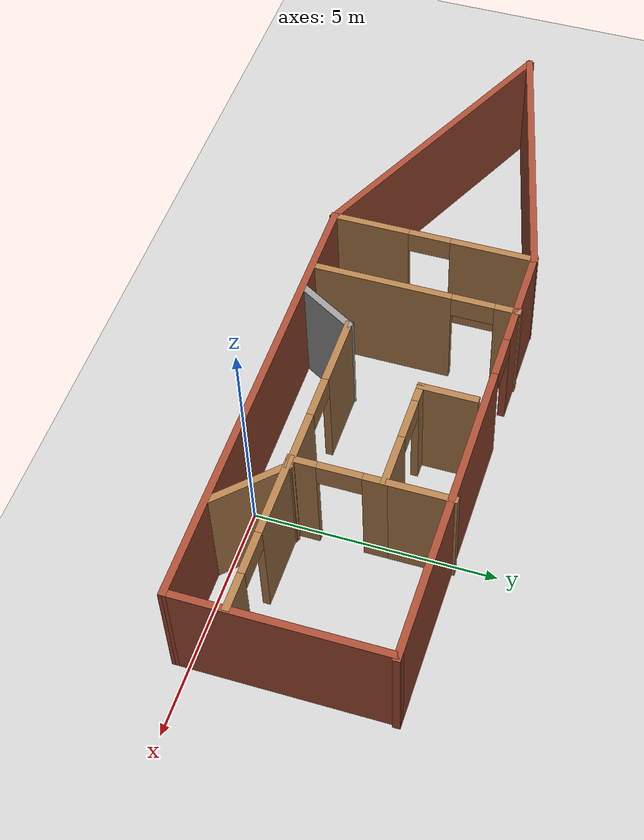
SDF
<sdf version="1.7">
 <world name="default">
  <light name="sun" type="directional">
   <pose>0 0 10 0 -0 0</pose>
   <diffuse>0.8 0.8 0.8 1</diffuse>
   <specular>0.2 0.2 0.2 1</specular>
   <attenuation>
    <range>1000</range>
    <constant>0.9</constant>
    <linear>0.01</linear>
    <quadratic>0.001</quadratic>
   </attenuation>
   <direction>-0.5 0.1 -0.9</direction>
   <spot><inner_angle>0</inner_angle><outer_angle>0</outer_angle><falloff>0</falloff></spot>
  </light>
  <model name="ground_plane">
   <static>1</static>
   <link name="link">
    <collision name="collision">
     <geometry><plane><normal>0 0 1</normal><size>100 100</size></plane></geometry>
     <surface>
      <contact><collide_bitmask>65535</collide_bitmask></contact>
      <friction><ode><mu>100</mu><mu2>50</mu2></ode></friction>
     </surface>
    </collision>
    <visual name="visual">
     <cast_shadows>0</cast_shadows>
     <geometry><plane><normal>0 0 1</normal><size>100 100</size></plane></geometry>
     <material>
      <script><uri>file://media/materials/scripts/gazebo.material</uri><name>Gazebo/Grey</name></script>
     </material>
    </visual>
   </link>
  </model>
  <gravity>0 0 -9.8</gravity>
  <magnetic_field>6e-06 2.3e-05 -4.2e-05</magnetic_field>
  <atmosphere type="adiabatic"/>
  <physics type="ode">
   <max_step_size>0.001</max_step_size>
   <real_time_factor>1</real_time_factor>
   <real_time_update_rate>1000</real_time_update_rate>
  </physics>
  <scene><ambient>0.4 0.4 0.4 1</ambient><background>0.7 0.7 0.7 1</background><shadows>1</shadows></scene>
  <spherical_coordinates>
   <surface_model>EARTH_WGS84</surface_model>
   <latitude_deg>0</latitude_deg>
   <longitude_deg>0</longitude_deg>
   <elevation>0</elevation>
   <heading_deg>0</heading_deg>
  </spherical_coordinates>
  <model name="Untitled">
   <pose>-4.24526 1.90712 0 0 -0 0</pose>
   <link name="Wall_0">
    <pose>2.98152 2.14819 0 0 -0 3.14159</pose>
    <visual name="Wall_0_Visual_0">
     <pose>-1.59177 0 1.25 0 -0 0</pose>
     <geometry><box><size>6.56647 0.15 2.5</size></box></geometry>
     <material>
      <script><uri>file://media/materials/scripts/gazebo.material</uri><name>Gazebo/Bricks</name></script>
      <ambient>1 1 1 1</ambient>
     </material>
     <meta><layer>0</layer></meta>
    </visual>
    <collision name="Wall_0_Collision_0">
     <geometry><box><size>6.56647 0.15 2.5</size></box></geometry>
     <pose>-1.59177 0 1.25 0 -0 0</pose>
    </collision>
    <visual name="Wall_0_Visual_1">
     <pose>3.73323 0 1.25 0 -0 0</pose>
     <geometry><box><size>2.28353 0.15 2.5</size></box></geometry>
     <material>
      <script><uri>file://media/materials/scripts/gazebo.material</uri><name>Gazebo/Bricks</name></script>
      <ambient>1 1 1 1</ambient>
     </material>
     <meta><layer>0</layer></meta>
    </visual>
    <collision name="Wall_0_Collision_1">
     <geometry><box><size>2.28353 0.15 2.5</size></box></geometry>
     <pose>3.73323 0 1.25 0 -0 0</pose>
    </collision>
    <visual name="Wall_0_Visual_2">
     <pose>2.14147 0 2.25 0 -0 0</pose>
     <geometry><box><size>0.9 0.15 0.5</size></box></geometry>
     <material>
      <script><uri>file://media/materials/scripts/gazebo.material</uri><name>Gazebo/Bricks</name></script>
      <ambient>1 1 1 1</ambient>
     </material>
     <meta><layer>0</layer></meta>
    </visual>
    <collision name="Wall_0_Collision_2">
     <geometry><box><size>0.9 0.15 0.5</size></box></geometry>
     <pose>2.14147 0 2.25 0 -0 0</pose>
    </collision>
   </link>
   <link name="Wall_1">
    <pose>-1.85974 -0.014464 0 0 -0 -1.56848</pose>
    <visual name="Wall_1_Visual_0">
     <pose>-1.30721 0 1.25 0 -0 0</pose>
     <geometry><box><size>1.86169 0.15 2.5</size></box></geometry>
     <material>
      <script><uri>file://media/materials/scripts/gazebo.material</uri><name>Gazebo/Wood</name></script>
      <ambient>1 1 1 1</ambient>
     </material>
     <meta><layer>0</layer></meta>
    </visual>
    <collision name="Wall_1_Collision_0">
     <geometry><box><size>1.86169 0.15 2.5</size></box></geometry>
     <pose>-1.30721 0 1.25 0 -0 0</pose>
    </collision>
    <visual name="Wall_1_Visual_1">
     <pose>1.38084 0 1.25 0 -0 0</pose>
     <geometry><box><size>1.71442 0.15 2.5</size></box></geometry>
     <material>
      <script><uri>file://media/materials/scripts/gazebo.material</uri><name>Gazebo/Wood</name></script>
      <ambient>1 1 1 1</ambient>
     </material>
     <meta><layer>0</layer></meta>
    </visual>
    <collision name="Wall_1_Collision_1">
     <geometry><box><size>1.71442 0.15 2.5</size></box></geometry>
     <pose>1.38084 0 1.25 0 -0 0</pose>
    </collision>
    <visual name="Wall_1_Visual_2">
     <pose>0.073635 0 2.25 0 -0 0</pose>
     <geometry><box><size>0.9 0.15 0.5</size></box></geometry>
     <material>
      <script><uri>file://media/materials/scripts/gazebo.material</uri><name>Gazebo/Wood</name></script>
      <ambient>1 1 1 1</ambient>
     </material>
     <meta><layer>0</layer></meta>
    </visual>
    <collision name="Wall_1_Collision_2">
     <geometry><box><size>0.9 0.15 0.5</size></box></geometry>
     <pose>0.073635 0 2.25 0 -0 0</pose>
    </collision>
   </link>
   <link name="Wall_10">
    <collision name="Wall_10_Collision">
     <geometry><box><size>1.5 0.15 2.5</size></box></geometry>
     <pose>0 0 1.25 0 -0 0</pose>
    </collision>
    <visual name="Wall_10_Visual">
     <pose>0 0 1.25 0 -0 0</pose>
     <geometry><box><size>1.5 0.15 2.5</size></box></geometry>
     <material>
      <script><uri>file://media/materials/scripts/gazebo.material</uri><name>Gazebo/Wood</name></script>
      <ambient>1 1 1 1</ambient>
     </material>
     <meta><layer>0</layer></meta>
    </visual>
    <pose>4.35591 1.52676 0 0 -0 -1.5708</pose>
   </link>
   <link name="Wall_11">
    <pose>3.18091 0.851762 0 0 -0 3.14159</pose>
    <visual name="Wall_11_Visual_0">
     <pose>-0.67419 0 1.25 0 -0 0</pose>
     <geometry><box><size>1.15162 0.15 2.5</size></box></geometry>
     <material>
      <script><uri>file://media/materials/scripts/gazebo.material</uri><name>Gazebo/Wood</name></script>
      <ambient>1 1 1 1</ambient>
     </material>
     <meta><layer>0</layer></meta>
    </visual>
    <collision name="Wall_11_Collision_0">
     <geometry><box><size>1.15162 0.15 2.5</size></box></geometry>
     <pose>-0.67419 0 1.25 0 -0 0</pose>
    </collision>
    <visual name="Wall_11_Visual_1">
     <pose>1.02581 0 1.25 0 -0 0</pose>
     <geometry><box><size>0.44838 0.15 2.5</size></box></geometry>
     <material>
      <script><uri>file://media/materials/scripts/gazebo.material</uri><name>Gazebo/Wood</name></script>
      <ambient>1 1 1 1</ambient>
     </material>
     <meta><layer>0</layer></meta>
    </visual>
    <collision name="Wall_11_Collision_1">
     <geometry><box><size>0.44838 0.15 2.5</size></box></geometry>
     <pose>1.02581 0 1.25 0 -0 0</pose>
    </collision>
    <visual name="Wall_11_Visual_2">
     <pose>0.35162 0 2.25 0 -0 0</pose>
     <geometry><box><size>0.9 0.15 0.5</size></box></geometry>
     <material>
      <script><uri>file://media/materials/scripts/gazebo.material</uri><name>Gazebo/Wood</name></script>
      <ambient>1 1 1 1</ambient>
     </material>
     <meta><layer>0</layer></meta>
    </visual>
    <collision name="Wall_11_Collision_2">
     <geometry><box><size>0.9 0.15 0.5</size></box></geometry>
     <pose>0.35162 0 2.25 0 -0 0</pose>
    </collision>
   </link>
   <link name="Wall_12">
    <collision name="Wall_12_Collision">
     <geometry><box><size>1.25 0.15 2.5</size></box></geometry>
     <pose>0 0 1.25 0 -0 0</pose>
    </collision>
    <visual name="Wall_12_Visual">
     <pose>0 0 1.25 0 -0 0</pose>
     <geometry><box><size>1.25 0.15 2.5</size></box></geometry>
     <material>
      <script><uri>file://media/materials/scripts/gazebo.material</uri><name>Gazebo/Wood</name></script>
      <ambient>1 1 1 1</ambient>
     </material>
     <meta><layer>0</layer></meta>
    </visual>
    <pose>2.00591 1.40176 0 0 -0 1.5708</pose>
   </link>
   <link name="Wall_14">
    <collision name="Wall_14_Collision">
     <geometry><box><size>6.25 0.15 2.5</size></box></geometry>
     <pose>0 0 1.25 0 -0 0</pose>
    </collision>
    <visual name="Wall_14_Visual">
     <pose>0 0 1.25 0 -0 0</pose>
     <geometry><box><size>6.25 0.15 2.5</size></box></geometry>
     <material>
      <script><uri>file://media/materials/scripts/gazebo.material</uri><name>Gazebo/Bricks</name></script>
      <ambient>1 1 1 1</ambient>
     </material>
     <meta><layer>0</layer></meta>
    </visual>
    <pose>-4.81081 1.35879 0 0 -0 -2.87979</pose>
   </link>
   <link name="Wall_15">
    <collision name="Wall_15_Collision">
     <geometry><box><size>6.65989 0.15 2.5</size></box></geometry>
     <pose>0 0 1.25 0 -0 0</pose>
    </collision>
    <visual name="Wall_15_Visual">
     <pose>0 0 1.25 0 -0 0</pose>
     <geometry><box><size>6.65989 0.15 2.5</size></box></geometry>
     <material>
      <script><uri>file://media/materials/scripts/gazebo.material</uri><name>Gazebo/Bricks</name></script>
      <ambient>1 1 1 1</ambient>
     </material>
     <meta><layer>0</layer></meta>
    </visual>
    <pose>-4.80581 -0.803862 0 0 -0 -0.435539</pose>
   </link>
   <link name="Wall_17">
    <pose>4.35591 -0.073238 0 0 -0 -1.5708</pose>
    <visual name="Wall_17_Visual_0">
     <pose>-0.752231 0 1.25 0 -0 0</pose>
     <geometry><box><size>0.495538 0.15 2.5</size></box></geometry>
     <material>
      <script><uri>file://media/materials/scripts/gazebo.material</uri><name>Gazebo/Wood</name></script>
      <ambient>1 1 1 1</ambient>
     </material>
     <meta><layer>0</layer></meta>
    </visual>
    <collision name="Wall_17_Collision_0">
     <geometry><box><size>0.495538 0.15 2.5</size></box></geometry>
     <pose>-0.752231 0 1.25 0 -0 0</pose>
    </collision>
    <visual name="Wall_17_Visual_1">
     <pose>0.697769 0 1.25 0 -0 0</pose>
     <geometry><box><size>0.604462 0.15 2.5</size></box></geometry>
     <material>
      <script><uri>file://media/materials/scripts/gazebo.material</uri><name>Gazebo/Wood</name></script>
      <ambient>1 1 1 1</ambient>
     </material>
     <meta><layer>0</layer></meta>
    </visual>
    <collision name="Wall_17_Collision_1">
     <geometry><box><size>0.604462 0.15 2.5</size></box></geometry>
     <pose>0.697769 0 1.25 0 -0 0</pose>
    </collision>
    <visual name="Wall_17_Visual_2">
     <pose>-0.054462 0 2.25 0 -0 0</pose>
     <geometry><box><size>0.9 0.15 0.5</size></box></geometry>
     <material>
      <script><uri>file://media/materials/scripts/gazebo.material</uri><name>Gazebo/Wood</name></script>
      <ambient>1 1 1 1</ambient>
     </material>
     <meta><layer>0</layer></meta>
    </visual>
    <collision name="Wall_17_Collision_2">
     <geometry><box><size>0.9 0.15 0.5</size></box></geometry>
     <pose>-0.054462 0 2.25 0 -0 0</pose>
    </collision>
   </link>
   <link name="Wall_18">
    <pose>6.03091 -0.998238 0 0 -0 0</pose>
    <visual name="Wall_18_Visual_0">
     <pose>-0.850361 0 1.25 0 -0 0</pose>
     <geometry><box><size>1.79928 0.15 2.5</size></box></geometry>
     <material>
      <script><uri>file://media/materials/scripts/gazebo.material</uri><name>Gazebo/Wood</name></script>
      <ambient>1 1 1 1</ambient>
     </material>
     <meta><layer>0</layer></meta>
    </visual>
    <collision name="Wall_18_Collision_0">
     <geometry><box><size>1.79928 0.15 2.5</size></box></geometry>
     <pose>-0.850361 0 1.25 0 -0 0</pose>
    </collision>
    <visual name="Wall_18_Visual_1">
     <pose>1.34964 0 1.25 0 -0 0</pose>
     <geometry><box><size>0.800723 0.15 2.5</size></box></geometry>
     <material>
      <script><uri>file://media/materials/scripts/gazebo.material</uri><name>Gazebo/Wood</name></script>
      <ambient>1 1 1 1</ambient>
     </material>
     <meta><layer>0</layer></meta>
    </visual>
    <collision name="Wall_18_Collision_1">
     <geometry><box><size>0.800723 0.15 2.5</size></box></geometry>
     <pose>1.34964 0 1.25 0 -0 0</pose>
    </collision>
    <visual name="Wall_18_Visual_2">
     <pose>0.499277 0 2.25 0 -0 0</pose>
     <geometry><box><size>0.9 0.15 0.5</size></box></geometry>
     <material>
      <script><uri>file://media/materials/scripts/gazebo.material</uri><name>Gazebo/Wood</name></script>
      <ambient>1 1 1 1</ambient>
     </material>
     <meta><layer>0</layer></meta>
    </visual>
    <collision name="Wall_18_Collision_2">
     <geometry><box><size>0.9 0.15 0.5</size></box></geometry>
     <pose>0.499277 0 2.25 0 -0 0</pose>
    </collision>
   </link>
   <link name="Wall_2">
    <collision name="Wall_2_Collision">
     <geometry><box><size>9.75 0.15 2.5</size></box></geometry>
     <pose>0 0 1.25 0 -0 0</pose>
    </collision>
    <visual name="Wall_2_Visual">
     <pose>0 0 1.25 0 -0 0</pose>
     <geometry><box><size>9.75 0.15 2.5</size></box></geometry>
     <material>
      <script><uri>file://media/materials/scripts/gazebo.material</uri><name>Gazebo/Bricks</name></script>
      <ambient>1 1 1 1</ambient>
     </material>
     <meta><layer>0</layer></meta>
    </visual>
    <pose>2.94526 -2.17712 0 0 -0 0</pose>
   </link>
   <link name="Wall_20">
    <pose>-0.385863 0.003631 0 0 -0 -1.5708</pose>
    <visual name="Wall_20_Visual_0">
     <pose>-1.97489 0 1.25 0 -0 0</pose>
     <geometry><box><size>0.550224 0.15 2.5</size></box></geometry>
     <material>
      <script><uri>file://media/materials/scripts/gazebo.material</uri><name>Gazebo/Wood</name></script>
      <ambient>1 1 1 1</ambient>
     </material>
     <meta><layer>0</layer></meta>
    </visual>
    <collision name="Wall_20_Collision_0">
     <geometry><box><size>0.550224 0.15 2.5</size></box></geometry>
     <pose>-1.97489 0 1.25 0 -0 0</pose>
    </collision>
    <visual name="Wall_20_Visual_1">
     <pose>0.725112 0 1.25 0 -0 0</pose>
     <geometry><box><size>3.04978 0.15 2.5</size></box></geometry>
     <material>
      <script><uri>file://media/materials/scripts/gazebo.material</uri><name>Gazebo/Wood</name></script>
      <ambient>1 1 1 1</ambient>
     </material>
     <meta><layer>0</layer></meta>
    </visual>
    <collision name="Wall_20_Collision_1">
     <geometry><box><size>3.04978 0.15 2.5</size></box></geometry>
     <pose>0.725112 0 1.25 0 -0 0</pose>
    </collision>
    <visual name="Wall_20_Visual_2">
     <pose>-1.24978 0 2.25 0 -0 0</pose>
     <geometry><box><size>0.9 0.15 0.5</size></box></geometry>
     <material>
      <script><uri>file://media/materials/scripts/gazebo.material</uri><name>Gazebo/Wood</name></script>
      <ambient>1 1 1 1</ambient>
     </material>
     <meta><layer>0</layer></meta>
    </visual>
    <collision name="Wall_20_Collision_2">
     <geometry><box><size>0.9 0.15 0.5</size></box></geometry>
     <pose>-1.24978 0 2.25 0 -0 0</pose>
    </collision>
   </link>
   <link name="Wall_3">
    <collision name="Wall_3_Collision">
     <geometry><box><size>4.4761 0.15 2.5</size></box></geometry>
     <pose>0 0 1.25 0 -0 0</pose>
    </collision>
    <visual name="Wall_3_Visual">
     <pose>0 0 1.25 0 -0 0</pose>
     <geometry><box><size>4.4761 0.15 2.5</size></box></geometry>
     <material>
      <script><uri>file://media/materials/scripts/gazebo.material</uri><name>Gazebo/Bricks</name></script>
      <ambient>1 1 1 1</ambient>
     </material>
     <meta><layer>0</layer></meta>
    </visual>
    <pose>7.74026 -0.014464 0 0 -0 1.57311</pose>
   </link>
   <link name="Wall_5">
    <collision name="Wall_5_Collision">
     <geometry><box><size>1.5 0.15 2.5</size></box></geometry>
     <pose>0 0 1.25 0 -0 0</pose>
    </collision>
    <visual name="Wall_5_Visual">
     <pose>0 0 1.25 0 -0 0</pose>
     <geometry><box><size>1.5 0.15 2.5</size></box></geometry>
     <material>
      <script><uri>file://media/materials/scripts/gazebo.material</uri><name>Gazebo/Grey</name></script>
      <ambient>1 1 1 1</ambient>
     </material>
     <meta><layer>0</layer></meta>
    </visual>
    <pose>0.582764 -1.55255 0 0 -0 1.0472</pose>
   </link>
   <link name="Wall_6">
    <pose>2.72026 -0.967987 0 0 -0 0</pose>
    <visual name="Wall_6_Visual_0">
     <pose>-1.10799 0 1.25 0 -0 0</pose>
     <geometry><box><size>1.53403 0.15 2.5</size></box></geometry>
     <material>
      <script><uri>file://media/materials/scripts/gazebo.material</uri><name>Gazebo/Wood</name></script>
      <ambient>1 1 1 1</ambient>
     </material>
     <meta><layer>0</layer></meta>
    </visual>
    <collision name="Wall_6_Collision_0">
     <geometry><box><size>1.53403 0.15 2.5</size></box></geometry>
     <pose>-1.10799 0 1.25 0 -0 0</pose>
    </collision>
    <visual name="Wall_6_Visual_1">
     <pose>1.21701 0 1.25 0 -0 0</pose>
     <geometry><box><size>1.31597 0.15 2.5</size></box></geometry>
     <material>
      <script><uri>file://media/materials/scripts/gazebo.material</uri><name>Gazebo/Wood</name></script>
      <ambient>1 1 1 1</ambient>
     </material>
     <meta><layer>0</layer></meta>
    </visual>
    <collision name="Wall_6_Collision_1">
     <geometry><box><size>1.31597 0.15 2.5</size></box></geometry>
     <pose>1.21701 0 1.25 0 -0 0</pose>
    </collision>
    <visual name="Wall_6_Visual_2">
     <pose>0.109028 0 2.25 0 -0 0</pose>
     <geometry><box><size>0.9 0.15 0.5</size></box></geometry>
     <material>
      <script><uri>file://media/materials/scripts/gazebo.material</uri><name>Gazebo/Wood</name></script>
      <ambient>1 1 1 1</ambient>
     </material>
     <meta><layer>0</layer></meta>
    </visual>
    <collision name="Wall_6_Collision_2">
     <geometry><box><size>0.9 0.15 0.5</size></box></geometry>
     <pose>0.109028 0 2.25 0 -0 0</pose>
    </collision>
   </link>
   <link name="Wall_7">
    <collision name="Wall_7_Collision">
     <geometry><box><size>1.75 0.15 2.5</size></box></geometry>
     <pose>0 0 1.25 0 -0 0</pose>
    </collision>
    <visual name="Wall_7_Visual">
     <pose>0 0 1.25 0 -0 0</pose>
     <geometry><box><size>1.75 0.15 2.5</size></box></geometry>
     <material>
      <script><uri>file://media/materials/scripts/gazebo.material</uri><name>Gazebo/Wood</name></script>
      <ambient>1 1 1 1</ambient>
     </material>
     <meta><layer>0</layer></meta>
    </visual>
    <pose>5.08595 -1.53367 0 0 -0 -0.785398</pose>
   </link>
   <static>1</static>
  </model>
  <light name="sun" type="directional">
   <pose>-11.2722 -5.2097 10 0 -0 0</pose>
   <diffuse>0.8 0.8 0.8 1</diffuse>
   <specular>0.2 0.2 0.2 1</specular>
   <attenuation>
    <range>1000</range>
    <constant>0.9</constant>
    <linear>0.01</linear>
    <quadratic>0.001</quadratic>
   </attenuation>
   <direction>-0.5 0.1 -0.9</direction>
  </light>
  <light name="sun" type="directional">
   <pose>-14.1982 -10.5004 10 0 -0 0</pose>
   <diffuse>0.8 0.8 0.8 1</diffuse>
   <specular>0.2 0.2 0.2 1</specular>
   <attenuation>
    <range>1000</range>
    <constant>0.9</constant>
    <linear>0.01</linear>
    <quadratic>0.001</quadratic>
   </attenuation>
   <direction>-0.5 0.1 -0.9</direction>
  </light>
 </world>
</sdf>
